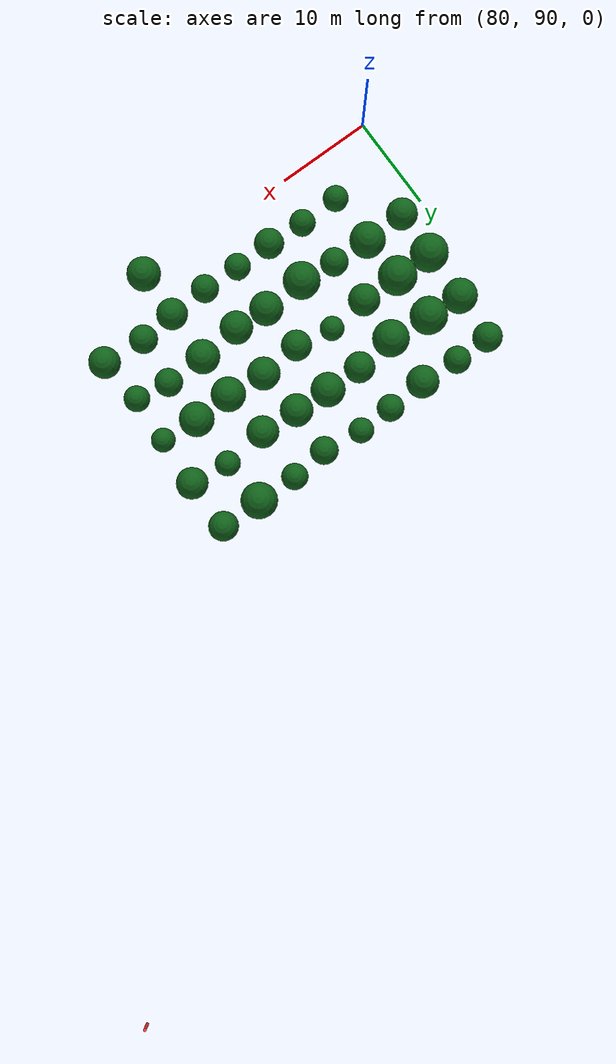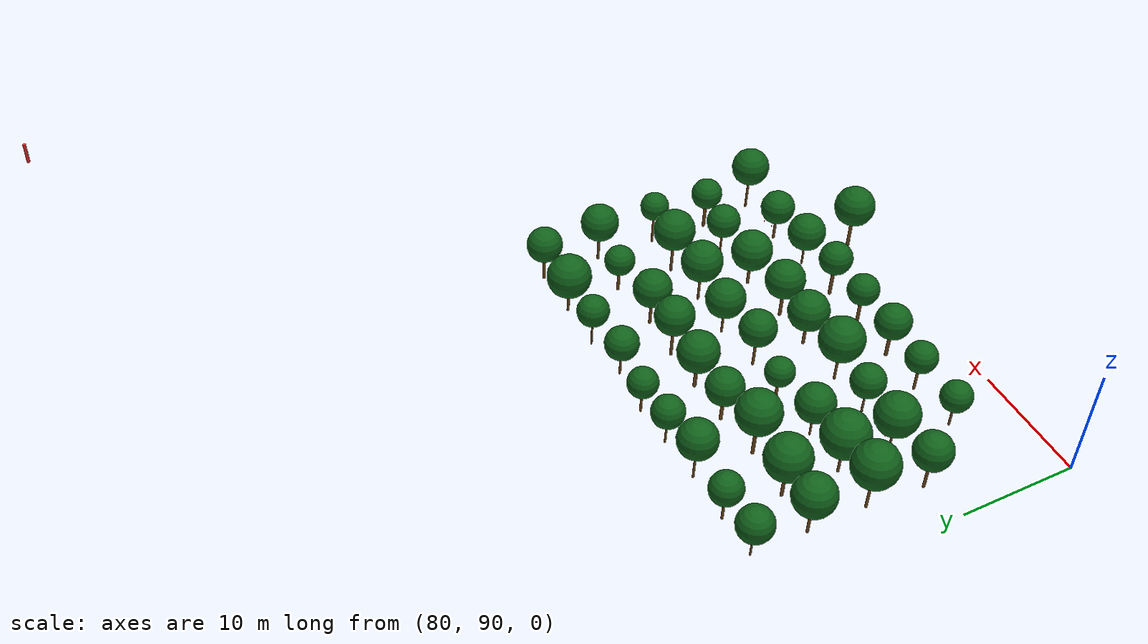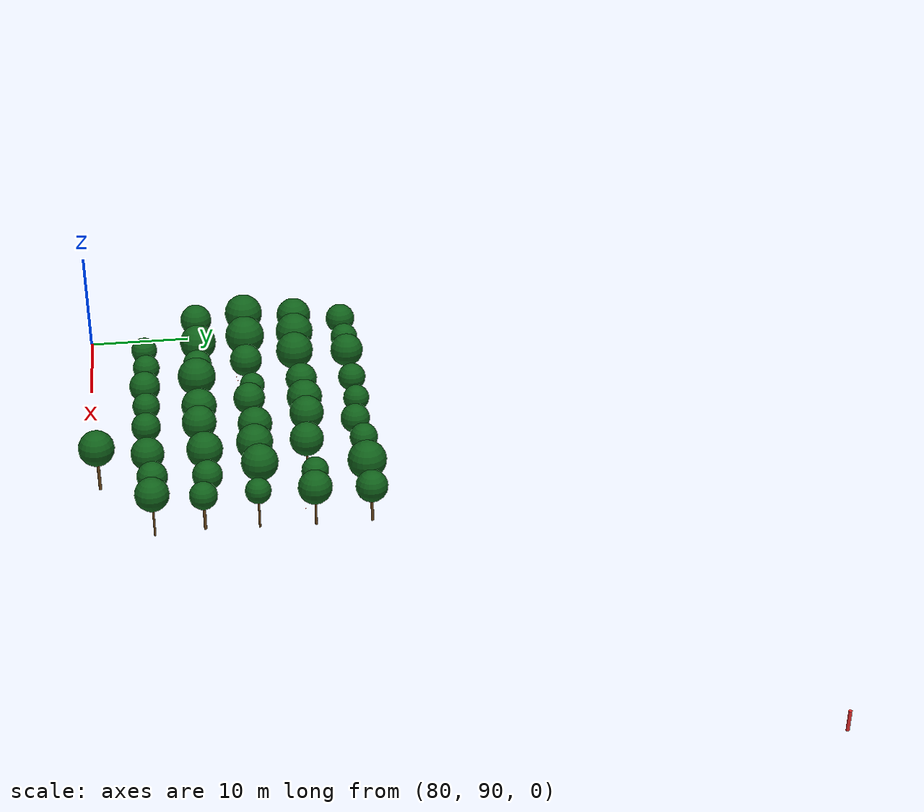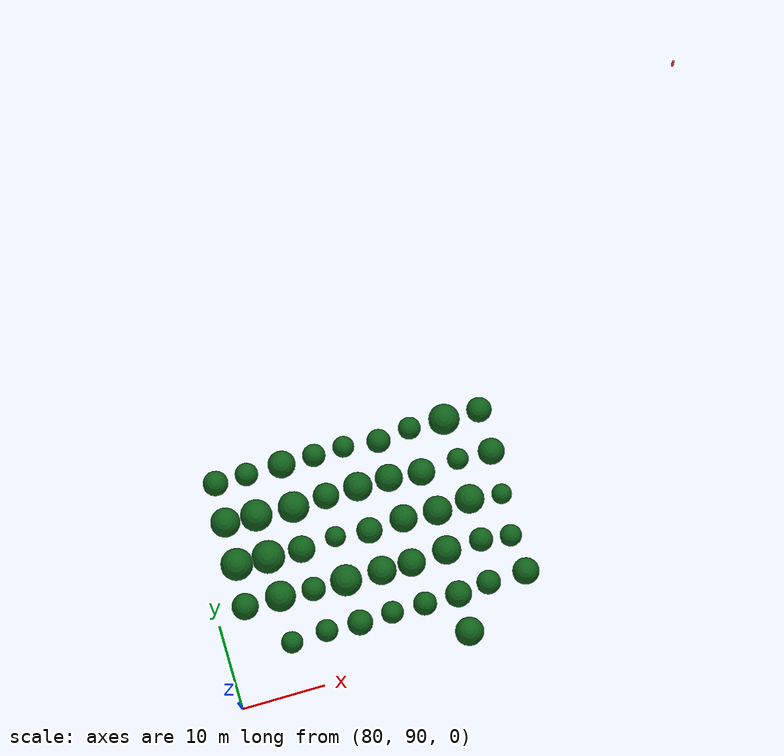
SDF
<sdf version="1.9">
 <world name="cheongsong_orchard">
  <model name="apple_tree_2177">
   <static>true</static>
   <pose>107.80 91.04 0 0 0 0</pose>
   <link name="link">
    <collision name="trunk_col">
     <pose>0 0 1.43 0 0 0</pose>
     <geometry><cylinder><radius>0.144</radius><length>2.86</length></cylinder></geometry>
    </collision>
    <visual name="trunk_vis">
     <pose>0 0 1.43 0 0 0</pose>
     <geometry><cylinder><radius>0.144</radius><length>2.86</length></cylinder></geometry>
     <material><ambient>0.35 0.22 0.08 1</ambient><diffuse>0.45 0.30 0.12 1</diffuse></material>
    </visual>
    <collision name="canopy_col">
     <pose>0 0 4.54 0 0 0</pose>
     <geometry><sphere><radius>1.69</radius></sphere></geometry>
    </collision>
    <visual name="canopy_vis">
     <pose>0 0 4.54 0 0 0</pose>
     <geometry><sphere><radius>1.69</radius></sphere></geometry>
     <material><ambient>0.04 0.28 0.06 1</ambient><diffuse>0.06 0.38 0.10 1</diffuse></material>
    </visual>
   </link>
  </model>
  <model name="apple_tree_2214">
   <static>true</static>
   <pose>87.68 95.58 0 0 0 0</pose>
   <link name="link">
    <collision name="trunk_col">
     <pose>0 0 0.98 0 0 0</pose>
     <geometry><cylinder><radius>0.095</radius><length>1.95</length></cylinder></geometry>
    </collision>
    <visual name="trunk_vis">
     <pose>0 0 0.98 0 0 0</pose>
     <geometry><cylinder><radius>0.095</radius><length>1.95</length></cylinder></geometry>
     <material><ambient>0.35 0.22 0.08 1</ambient><diffuse>0.45 0.30 0.12 1</diffuse></material>
    </visual>
    <collision name="canopy_col">
     <pose>0 0 3.24 0 0 0</pose>
     <geometry><sphere><radius>1.29</radius></sphere></geometry>
    </collision>
    <visual name="canopy_vis">
     <pose>0 0 3.24 0 0 0</pose>
     <geometry><sphere><radius>1.29</radius></sphere></geometry>
     <material><ambient>0.04 0.28 0.06 1</ambient><diffuse>0.06 0.38 0.10 1</diffuse></material>
    </visual>
   </link>
  </model>
  <model name="apple_tree_2215">
   <static>true</static>
   <pose>91.93 95.76 0 0 0 0</pose>
   <link name="link">
    <collision name="trunk_col">
     <pose>0 0 1.14 0 0 0</pose>
     <geometry><cylinder><radius>0.111</radius><length>2.28</length></cylinder></geometry>
    </collision>
    <visual name="trunk_vis">
     <pose>0 0 1.14 0 0 0</pose>
     <geometry><cylinder><radius>0.111</radius><length>2.28</length></cylinder></geometry>
     <material><ambient>0.35 0.22 0.08 1</ambient><diffuse>0.45 0.30 0.12 1</diffuse></material>
    </visual>
    <collision name="canopy_col">
     <pose>0 0 3.60 0 0 0</pose>
     <geometry><sphere><radius>1.32</radius></sphere></geometry>
    </collision>
    <visual name="canopy_vis">
     <pose>0 0 3.60 0 0 0</pose>
     <geometry><sphere><radius>1.32</radius></sphere></geometry>
     <material><ambient>0.04 0.28 0.06 1</ambient><diffuse>0.06 0.38 0.10 1</diffuse></material>
    </visual>
   </link>
  </model>
  <model name="apple_tree_2216">
   <static>true</static>
   <pose>95.90 95.58 0 0 0 0</pose>
   <link name="link">
    <collision name="trunk_col">
     <pose>0 0 1.15 0 0 0</pose>
     <geometry><cylinder><radius>0.148</radius><length>2.31</length></cylinder></geometry>
    </collision>
    <visual name="trunk_vis">
     <pose>0 0 1.15 0 0 0</pose>
     <geometry><cylinder><radius>0.148</radius><length>2.31</length></cylinder></geometry>
     <material><ambient>0.35 0.22 0.08 1</ambient><diffuse>0.45 0.30 0.12 1</diffuse></material>
    </visual>
    <collision name="canopy_col">
     <pose>0 0 3.81 0 0 0</pose>
     <geometry><sphere><radius>1.50</radius></sphere></geometry>
    </collision>
    <visual name="canopy_vis">
     <pose>0 0 3.81 0 0 0</pose>
     <geometry><sphere><radius>1.50</radius></sphere></geometry>
     <material><ambient>0.04 0.28 0.06 1</ambient><diffuse>0.06 0.38 0.10 1</diffuse></material>
    </visual>
   </link>
  </model>
  <model name="apple_tree_2217">
   <static>true</static>
   <pose>99.82 95.68 0 0 0 0</pose>
   <link name="link">
    <collision name="trunk_col">
     <pose>0 0 1.30 0 0 0</pose>
     <geometry><cylinder><radius>0.140</radius><length>2.60</length></cylinder></geometry>
    </collision>
    <visual name="trunk_vis">
     <pose>0 0 1.30 0 0 0</pose>
     <geometry><cylinder><radius>0.140</radius><length>2.60</length></cylinder></geometry>
     <material><ambient>0.35 0.22 0.08 1</ambient><diffuse>0.45 0.30 0.12 1</diffuse></material>
    </visual>
    <collision name="canopy_col">
     <pose>0 0 3.91 0 0 0</pose>
     <geometry><sphere><radius>1.32</radius></sphere></geometry>
    </collision>
    <visual name="canopy_vis">
     <pose>0 0 3.91 0 0 0</pose>
     <geometry><sphere><radius>1.32</radius></sphere></geometry>
     <material><ambient>0.04 0.28 0.06 1</ambient><diffuse>0.06 0.38 0.10 1</diffuse></material>
    </visual>
   </link>
  </model>
  <model name="apple_tree_2218">
   <static>true</static>
   <pose>103.74 95.62 0 0 0 0</pose>
   <link name="link">
    <collision name="trunk_col">
     <pose>0 0 1.30 0 0 0</pose>
     <geometry><cylinder><radius>0.146</radius><length>2.60</length></cylinder></geometry>
    </collision>
    <visual name="trunk_vis">
     <pose>0 0 1.30 0 0 0</pose>
     <geometry><cylinder><radius>0.146</radius><length>2.60</length></cylinder></geometry>
     <material><ambient>0.35 0.22 0.08 1</ambient><diffuse>0.45 0.30 0.12 1</diffuse></material>
    </visual>
    <collision name="canopy_col">
     <pose>0 0 3.99 0 0 0</pose>
     <geometry><sphere><radius>1.39</radius></sphere></geometry>
    </collision>
    <visual name="canopy_vis">
     <pose>0 0 3.99 0 0 0</pose>
     <geometry><sphere><radius>1.39</radius></sphere></geometry>
     <material><ambient>0.04 0.28 0.06 1</ambient><diffuse>0.06 0.38 0.10 1</diffuse></material>
    </visual>
   </link>
  </model>
  <model name="apple_tree_2219">
   <static>true</static>
   <pose>107.80 95.67 0 0 0 0</pose>
   <link name="link">
    <collision name="trunk_col">
     <pose>0 0 1.00 0 0 0</pose>
     <geometry><cylinder><radius>0.080</radius><length>2.00</length></cylinder></geometry>
    </collision>
    <visual name="trunk_vis">
     <pose>0 0 1.00 0 0 0</pose>
     <geometry><cylinder><radius>0.080</radius><length>2.00</length></cylinder></geometry>
     <material><ambient>0.35 0.22 0.08 1</ambient><diffuse>0.45 0.30 0.12 1</diffuse></material>
    </visual>
    <collision name="canopy_col">
     <pose>0 0 3.57 0 0 0</pose>
     <geometry><sphere><radius>1.57</radius></sphere></geometry>
    </collision>
    <visual name="canopy_vis">
     <pose>0 0 3.57 0 0 0</pose>
     <geometry><sphere><radius>1.57</radius></sphere></geometry>
     <material><ambient>0.04 0.28 0.06 1</ambient><diffuse>0.06 0.38 0.10 1</diffuse></material>
    </visual>
   </link>
  </model>
  <model name="apple_tree_2220">
   <static>true</static>
   <pose>111.55 96.04 0 0 0 0</pose>
   <link name="link">
    <collision name="trunk_col">
     <pose>0 0 1.00 0 0 0</pose>
     <geometry><cylinder><radius>0.112</radius><length>2.01</length></cylinder></geometry>
    </collision>
    <visual name="trunk_vis">
     <pose>0 0 1.00 0 0 0</pose>
     <geometry><cylinder><radius>0.112</radius><length>2.01</length></cylinder></geometry>
     <material><ambient>0.35 0.22 0.08 1</ambient><diffuse>0.45 0.30 0.12 1</diffuse></material>
    </visual>
    <collision name="canopy_col">
     <pose>0 0 3.44 0 0 0</pose>
     <geometry><sphere><radius>1.43</radius></sphere></geometry>
    </collision>
    <visual name="canopy_vis">
     <pose>0 0 3.44 0 0 0</pose>
     <geometry><sphere><radius>1.43</radius></sphere></geometry>
     <material><ambient>0.04 0.28 0.06 1</ambient><diffuse>0.06 0.38 0.10 1</diffuse></material>
    </visual>
   </link>
  </model>
  <model name="apple_tree_2221">
   <static>true</static>
   <pose>116.03 96.01 0 0 0 0</pose>
   <link name="link">
    <collision name="trunk_col">
     <pose>0 0 1.44 0 0 0</pose>
     <geometry><cylinder><radius>0.099</radius><length>2.89</length></cylinder></geometry>
    </collision>
    <visual name="trunk_vis">
     <pose>0 0 1.44 0 0 0</pose>
     <geometry><cylinder><radius>0.099</radius><length>2.89</length></cylinder></geometry>
     <material><ambient>0.35 0.22 0.08 1</ambient><diffuse>0.45 0.30 0.12 1</diffuse></material>
    </visual>
    <collision name="canopy_col">
     <pose>0 0 4.47 0 0 0</pose>
     <geometry><sphere><radius>1.58</radius></sphere></geometry>
    </collision>
    <visual name="canopy_vis">
     <pose>0 0 4.47 0 0 0</pose>
     <geometry><sphere><radius>1.58</radius></sphere></geometry>
     <material><ambient>0.04 0.28 0.06 1</ambient><diffuse>0.06 0.38 0.10 1</diffuse></material>
    </visual>
   </link>
  </model>
  <model name="apple_tree_2259">
   <static>true</static>
   <pose>83.56 101.00 0 0 0 0</pose>
   <link name="link">
    <collision name="trunk_col">
     <pose>0 0 1.27 0 0 0</pose>
     <geometry><cylinder><radius>0.120</radius><length>2.54</length></cylinder></geometry>
    </collision>
    <visual name="trunk_vis">
     <pose>0 0 1.27 0 0 0</pose>
     <geometry><cylinder><radius>0.120</radius><length>2.54</length></cylinder></geometry>
     <material><ambient>0.35 0.22 0.08 1</ambient><diffuse>0.45 0.30 0.12 1</diffuse></material>
    </visual>
    <collision name="canopy_col">
     <pose>0 0 4.12 0 0 0</pose>
     <geometry><sphere><radius>1.58</radius></sphere></geometry>
    </collision>
    <visual name="canopy_vis">
     <pose>0 0 4.12 0 0 0</pose>
     <geometry><sphere><radius>1.58</radius></sphere></geometry>
     <material><ambient>0.04 0.28 0.06 1</ambient><diffuse>0.06 0.38 0.10 1</diffuse></material>
    </visual>
   </link>
  </model>
  <model name="apple_tree_2260">
   <static>true</static>
   <pose>87.81 101.06 0 0 0 0</pose>
   <link name="link">
    <collision name="trunk_col">
     <pose>0 0 1.01 0 0 0</pose>
     <geometry><cylinder><radius>0.092</radius><length>2.02</length></cylinder></geometry>
    </collision>
    <visual name="trunk_vis">
     <pose>0 0 1.01 0 0 0</pose>
     <geometry><cylinder><radius>0.092</radius><length>2.02</length></cylinder></geometry>
     <material><ambient>0.35 0.22 0.08 1</ambient><diffuse>0.45 0.30 0.12 1</diffuse></material>
    </visual>
    <collision name="canopy_col">
     <pose>0 0 3.84 0 0 0</pose>
     <geometry><sphere><radius>1.81</radius></sphere></geometry>
    </collision>
    <visual name="canopy_vis">
     <pose>0 0 3.84 0 0 0</pose>
     <geometry><sphere><radius>1.81</radius></sphere></geometry>
     <material><ambient>0.04 0.28 0.06 1</ambient><diffuse>0.06 0.38 0.10 1</diffuse></material>
    </visual>
   </link>
  </model>
  <model name="apple_tree_2261">
   <static>true</static>
   <pose>91.75 100.85 0 0 0 0</pose>
   <link name="link">
    <collision name="trunk_col">
     <pose>0 0 1.09 0 0 0</pose>
     <geometry><cylinder><radius>0.090</radius><length>2.18</length></cylinder></geometry>
    </collision>
    <visual name="trunk_vis">
     <pose>0 0 1.09 0 0 0</pose>
     <geometry><cylinder><radius>0.090</radius><length>2.18</length></cylinder></geometry>
     <material><ambient>0.35 0.22 0.08 1</ambient><diffuse>0.45 0.30 0.12 1</diffuse></material>
    </visual>
    <collision name="canopy_col">
     <pose>0 0 3.60 0 0 0</pose>
     <geometry><sphere><radius>1.42</radius></sphere></geometry>
    </collision>
    <visual name="canopy_vis">
     <pose>0 0 3.60 0 0 0</pose>
     <geometry><sphere><radius>1.42</radius></sphere></geometry>
     <material><ambient>0.04 0.28 0.06 1</ambient><diffuse>0.06 0.38 0.10 1</diffuse></material>
    </visual>
   </link>
  </model>
  <model name="apple_tree_2262">
   <static>true</static>
   <pose>95.65 100.70 0 0 0 0</pose>
   <link name="link">
    <collision name="trunk_col">
     <pose>0 0 1.30 0 0 0</pose>
     <geometry><cylinder><radius>0.106</radius><length>2.59</length></cylinder></geometry>
    </collision>
    <visual name="trunk_vis">
     <pose>0 0 1.30 0 0 0</pose>
     <geometry><cylinder><radius>0.106</radius><length>2.59</length></cylinder></geometry>
     <material><ambient>0.35 0.22 0.08 1</ambient><diffuse>0.45 0.30 0.12 1</diffuse></material>
    </visual>
    <collision name="canopy_col">
     <pose>0 0 4.45 0 0 0</pose>
     <geometry><sphere><radius>1.86</radius></sphere></geometry>
    </collision>
    <visual name="canopy_vis">
     <pose>0 0 4.45 0 0 0</pose>
     <geometry><sphere><radius>1.86</radius></sphere></geometry>
     <material><ambient>0.04 0.28 0.06 1</ambient><diffuse>0.06 0.38 0.10 1</diffuse></material>
    </visual>
   </link>
  </model>
  <model name="apple_tree_2263">
   <static>true</static>
   <pose>99.98 100.74 0 0 0 0</pose>
   <link name="link">
    <collision name="trunk_col">
     <pose>0 0 1.00 0 0 0</pose>
     <geometry><cylinder><radius>0.130</radius><length>1.99</length></cylinder></geometry>
    </collision>
    <visual name="trunk_vis">
     <pose>0 0 1.00 0 0 0</pose>
     <geometry><cylinder><radius>0.130</radius><length>1.99</length></cylinder></geometry>
     <material><ambient>0.35 0.22 0.08 1</ambient><diffuse>0.45 0.30 0.12 1</diffuse></material>
    </visual>
    <collision name="canopy_col">
     <pose>0 0 3.69 0 0 0</pose>
     <geometry><sphere><radius>1.70</radius></sphere></geometry>
    </collision>
    <visual name="canopy_vis">
     <pose>0 0 3.69 0 0 0</pose>
     <geometry><sphere><radius>1.70</radius></sphere></geometry>
     <material><ambient>0.04 0.28 0.06 1</ambient><diffuse>0.06 0.38 0.10 1</diffuse></material>
    </visual>
   </link>
  </model>
  <model name="apple_tree_2264">
   <static>true</static>
   <pose>103.54 100.64 0 0 0 0</pose>
   <link name="link">
    <collision name="trunk_col">
     <pose>0 0 1.17 0 0 0</pose>
     <geometry><cylinder><radius>0.140</radius><length>2.35</length></cylinder></geometry>
    </collision>
    <visual name="trunk_vis">
     <pose>0 0 1.17 0 0 0</pose>
     <geometry><cylinder><radius>0.140</radius><length>2.35</length></cylinder></geometry>
     <material><ambient>0.35 0.22 0.08 1</ambient><diffuse>0.45 0.30 0.12 1</diffuse></material>
    </visual>
    <collision name="canopy_col">
     <pose>0 0 4.00 0 0 0</pose>
     <geometry><sphere><radius>1.65</radius></sphere></geometry>
    </collision>
    <visual name="canopy_vis">
     <pose>0 0 4.00 0 0 0</pose>
     <geometry><sphere><radius>1.65</radius></sphere></geometry>
     <material><ambient>0.04 0.28 0.06 1</ambient><diffuse>0.06 0.38 0.10 1</diffuse></material>
    </visual>
   </link>
  </model>
  <model name="apple_tree_2265">
   <static>true</static>
   <pose>107.88 100.98 0 0 0 0</pose>
   <link name="link">
    <collision name="trunk_col">
     <pose>0 0 0.98 0 0 0</pose>
     <geometry><cylinder><radius>0.124</radius><length>1.97</length></cylinder></geometry>
    </collision>
    <visual name="trunk_vis">
     <pose>0 0 0.98 0 0 0</pose>
     <geometry><cylinder><radius>0.124</radius><length>1.97</length></cylinder></geometry>
     <material><ambient>0.35 0.22 0.08 1</ambient><diffuse>0.45 0.30 0.12 1</diffuse></material>
    </visual>
    <collision name="canopy_col">
     <pose>0 0 3.68 0 0 0</pose>
     <geometry><sphere><radius>1.71</radius></sphere></geometry>
    </collision>
    <visual name="canopy_vis">
     <pose>0 0 3.68 0 0 0</pose>
     <geometry><sphere><radius>1.71</radius></sphere></geometry>
     <material><ambient>0.04 0.28 0.06 1</ambient><diffuse>0.06 0.38 0.10 1</diffuse></material>
    </visual>
   </link>
  </model>
  <model name="apple_tree_2266">
   <static>true</static>
   <pose>112.07 101.07 0 0 0 0</pose>
   <link name="link">
    <collision name="trunk_col">
     <pose>0 0 1.07 0 0 0</pose>
     <geometry><cylinder><radius>0.085</radius><length>2.13</length></cylinder></geometry>
    </collision>
    <visual name="trunk_vis">
     <pose>0 0 1.07 0 0 0</pose>
     <geometry><cylinder><radius>0.085</radius><length>2.13</length></cylinder></geometry>
     <material><ambient>0.35 0.22 0.08 1</ambient><diffuse>0.45 0.30 0.12 1</diffuse></material>
    </visual>
    <collision name="canopy_col">
     <pose>0 0 3.54 0 0 0</pose>
     <geometry><sphere><radius>1.41</radius></sphere></geometry>
    </collision>
    <visual name="canopy_vis">
     <pose>0 0 3.54 0 0 0</pose>
     <geometry><sphere><radius>1.41</radius></sphere></geometry>
     <material><ambient>0.04 0.28 0.06 1</ambient><diffuse>0.06 0.38 0.10 1</diffuse></material>
    </visual>
   </link>
  </model>
  <model name="apple_tree_2267">
   <static>true</static>
   <pose>115.54 100.58 0 0 0 0</pose>
   <link name="link">
    <collision name="trunk_col">
     <pose>0 0 1.17 0 0 0</pose>
     <geometry><cylinder><radius>0.138</radius><length>2.33</length></cylinder></geometry>
    </collision>
    <visual name="trunk_vis">
     <pose>0 0 1.17 0 0 0</pose>
     <geometry><cylinder><radius>0.138</radius><length>2.33</length></cylinder></geometry>
     <material><ambient>0.35 0.22 0.08 1</ambient><diffuse>0.45 0.30 0.12 1</diffuse></material>
    </visual>
    <collision name="canopy_col">
     <pose>0 0 3.63 0 0 0</pose>
     <geometry><sphere><radius>1.30</radius></sphere></geometry>
    </collision>
    <visual name="canopy_vis">
     <pose>0 0 3.63 0 0 0</pose>
     <geometry><sphere><radius>1.30</radius></sphere></geometry>
     <material><ambient>0.04 0.28 0.06 1</ambient><diffuse>0.06 0.38 0.10 1</diffuse></material>
    </visual>
   </link>
  </model>
  <model name="apple_tree_2308">
   <static>true</static>
   <pose>83.95 105.92 0 0 0 0</pose>
   <link name="link">
    <collision name="trunk_col">
     <pose>0 0 1.45 0 0 0</pose>
     <geometry><cylinder><radius>0.112</radius><length>2.91</length></cylinder></geometry>
    </collision>
    <visual name="trunk_vis">
     <pose>0 0 1.45 0 0 0</pose>
     <geometry><cylinder><radius>0.112</radius><length>2.91</length></cylinder></geometry>
     <material><ambient>0.35 0.22 0.08 1</ambient><diffuse>0.45 0.30 0.12 1</diffuse></material>
    </visual>
    <collision name="canopy_col">
     <pose>0 0 4.82 0 0 0</pose>
     <geometry><sphere><radius>1.91</radius></sphere></geometry>
    </collision>
    <visual name="canopy_vis">
     <pose>0 0 4.82 0 0 0</pose>
     <geometry><sphere><radius>1.91</radius></sphere></geometry>
     <material><ambient>0.04 0.28 0.06 1</ambient><diffuse>0.06 0.38 0.10 1</diffuse></material>
    </visual>
   </link>
  </model>
  <model name="apple_tree_2309">
   <static>true</static>
   <pose>87.69 105.83 0 0 0 0</pose>
   <link name="link">
    <collision name="trunk_col">
     <pose>0 0 1.15 0 0 0</pose>
     <geometry><cylinder><radius>0.107</radius><length>2.31</length></cylinder></geometry>
    </collision>
    <visual name="trunk_vis">
     <pose>0 0 1.15 0 0 0</pose>
     <geometry><cylinder><radius>0.107</radius><length>2.31</length></cylinder></geometry>
     <material><ambient>0.35 0.22 0.08 1</ambient><diffuse>0.45 0.30 0.12 1</diffuse></material>
    </visual>
    <collision name="canopy_col">
     <pose>0 0 4.27 0 0 0</pose>
     <geometry><sphere><radius>1.96</radius></sphere></geometry>
    </collision>
    <visual name="canopy_vis">
     <pose>0 0 4.27 0 0 0</pose>
     <geometry><sphere><radius>1.96</radius></sphere></geometry>
     <material><ambient>0.04 0.28 0.06 1</ambient><diffuse>0.06 0.38 0.10 1</diffuse></material>
    </visual>
   </link>
  </model>
  <model name="apple_tree_2310">
   <static>true</static>
   <pose>91.66 105.71 0 0 0 0</pose>
   <link name="link">
    <collision name="trunk_col">
     <pose>0 0 1.03 0 0 0</pose>
     <geometry><cylinder><radius>0.081</radius><length>2.05</length></cylinder></geometry>
    </collision>
    <visual name="trunk_vis">
     <pose>0 0 1.03 0 0 0</pose>
     <geometry><cylinder><radius>0.081</radius><length>2.05</length></cylinder></geometry>
     <material><ambient>0.35 0.22 0.08 1</ambient><diffuse>0.45 0.30 0.12 1</diffuse></material>
    </visual>
    <collision name="canopy_col">
     <pose>0 0 3.65 0 0 0</pose>
     <geometry><sphere><radius>1.60</radius></sphere></geometry>
    </collision>
    <visual name="canopy_vis">
     <pose>0 0 3.65 0 0 0</pose>
     <geometry><sphere><radius>1.60</radius></sphere></geometry>
     <material><ambient>0.04 0.28 0.06 1</ambient><diffuse>0.06 0.38 0.10 1</diffuse></material>
    </visual>
   </link>
  </model>
  <model name="apple_tree_2311">
   <static>true</static>
   <pose>95.85 106.09 0 0 0 0</pose>
   <link name="link">
    <collision name="trunk_col">
     <pose>0 0 1.00 0 0 0</pose>
     <geometry><cylinder><radius>0.124</radius><length>2.00</length></cylinder></geometry>
    </collision>
    <visual name="trunk_vis">
     <pose>0 0 1.00 0 0 0</pose>
     <geometry><cylinder><radius>0.124</radius><length>2.00</length></cylinder></geometry>
     <material><ambient>0.35 0.22 0.08 1</ambient><diffuse>0.45 0.30 0.12 1</diffuse></material>
    </visual>
    <collision name="canopy_col">
     <pose>0 0 3.22 0 0 0</pose>
     <geometry><sphere><radius>1.22</radius></sphere></geometry>
    </collision>
    <visual name="canopy_vis">
     <pose>0 0 3.22 0 0 0</pose>
     <geometry><sphere><radius>1.22</radius></sphere></geometry>
     <material><ambient>0.04 0.28 0.06 1</ambient><diffuse>0.06 0.38 0.10 1</diffuse></material>
    </visual>
   </link>
  </model>
  <model name="apple_tree_2312">
   <static>true</static>
   <pose>99.85 105.60 0 0 0 0</pose>
   <link name="link">
    <collision name="trunk_col">
     <pose>0 0 1.29 0 0 0</pose>
     <geometry><cylinder><radius>0.112</radius><length>2.57</length></cylinder></geometry>
    </collision>
    <visual name="trunk_vis">
     <pose>0 0 1.29 0 0 0</pose>
     <geometry><cylinder><radius>0.112</radius><length>2.57</length></cylinder></geometry>
     <material><ambient>0.35 0.22 0.08 1</ambient><diffuse>0.45 0.30 0.12 1</diffuse></material>
    </visual>
    <collision name="canopy_col">
     <pose>0 0 4.11 0 0 0</pose>
     <geometry><sphere><radius>1.53</radius></sphere></geometry>
    </collision>
    <visual name="canopy_vis">
     <pose>0 0 4.11 0 0 0</pose>
     <geometry><sphere><radius>1.53</radius></sphere></geometry>
     <material><ambient>0.04 0.28 0.06 1</ambient><diffuse>0.06 0.38 0.10 1</diffuse></material>
    </visual>
   </link>
  </model>
  <model name="apple_tree_2313">
   <static>true</static>
   <pose>104.05 105.90 0 0 0 0</pose>
   <link name="link">
    <collision name="trunk_col">
     <pose>0 0 1.06 0 0 0</pose>
     <geometry><cylinder><radius>0.095</radius><length>2.12</length></cylinder></geometry>
    </collision>
    <visual name="trunk_vis">
     <pose>0 0 1.06 0 0 0</pose>
     <geometry><cylinder><radius>0.095</radius><length>2.12</length></cylinder></geometry>
     <material><ambient>0.35 0.22 0.08 1</ambient><diffuse>0.45 0.30 0.12 1</diffuse></material>
    </visual>
    <collision name="canopy_col">
     <pose>0 0 3.77 0 0 0</pose>
     <geometry><sphere><radius>1.65</radius></sphere></geometry>
    </collision>
    <visual name="canopy_vis">
     <pose>0 0 3.77 0 0 0</pose>
     <geometry><sphere><radius>1.65</radius></sphere></geometry>
     <material><ambient>0.04 0.28 0.06 1</ambient><diffuse>0.06 0.38 0.10 1</diffuse></material>
    </visual>
   </link>
  </model>
  <model name="apple_tree_2314">
   <static>true</static>
   <pose>108.11 105.65 0 0 0 0</pose>
   <link name="link">
    <collision name="trunk_col">
     <pose>0 0 1.27 0 0 0</pose>
     <geometry><cylinder><radius>0.103</radius><length>2.54</length></cylinder></geometry>
    </collision>
    <visual name="trunk_vis">
     <pose>0 0 1.27 0 0 0</pose>
     <geometry><cylinder><radius>0.103</radius><length>2.54</length></cylinder></geometry>
     <material><ambient>0.35 0.22 0.08 1</ambient><diffuse>0.45 0.30 0.12 1</diffuse></material>
    </visual>
    <collision name="canopy_col">
     <pose>0 0 4.27 0 0 0</pose>
     <geometry><sphere><radius>1.73</radius></sphere></geometry>
    </collision>
    <visual name="canopy_vis">
     <pose>0 0 4.27 0 0 0</pose>
     <geometry><sphere><radius>1.73</radius></sphere></geometry>
     <material><ambient>0.04 0.28 0.06 1</ambient><diffuse>0.06 0.38 0.10 1</diffuse></material>
    </visual>
   </link>
  </model>
  <model name="apple_tree_2315">
   <static>true</static>
   <pose>112.06 105.90 0 0 0 0</pose>
   <link name="link">
    <collision name="trunk_col">
     <pose>0 0 1.41 0 0 0</pose>
     <geometry><cylinder><radius>0.116</radius><length>2.83</length></cylinder></geometry>
    </collision>
    <visual name="trunk_vis">
     <pose>0 0 1.41 0 0 0</pose>
     <geometry><cylinder><radius>0.116</radius><length>2.83</length></cylinder></geometry>
     <material><ambient>0.35 0.22 0.08 1</ambient><diffuse>0.45 0.30 0.12 1</diffuse></material>
    </visual>
    <collision name="canopy_col">
     <pose>0 0 4.55 0 0 0</pose>
     <geometry><sphere><radius>1.73</radius></sphere></geometry>
    </collision>
    <visual name="canopy_vis">
     <pose>0 0 4.55 0 0 0</pose>
     <geometry><sphere><radius>1.73</radius></sphere></geometry>
     <material><ambient>0.04 0.28 0.06 1</ambient><diffuse>0.06 0.38 0.10 1</diffuse></material>
    </visual>
   </link>
  </model>
  <model name="apple_tree_2316">
   <static>true</static>
   <pose>115.85 105.52 0 0 0 0</pose>
   <link name="link">
    <collision name="trunk_col">
     <pose>0 0 1.37 0 0 0</pose>
     <geometry><cylinder><radius>0.100</radius><length>2.75</length></cylinder></geometry>
    </collision>
    <visual name="trunk_vis">
     <pose>0 0 1.37 0 0 0</pose>
     <geometry><cylinder><radius>0.100</radius><length>2.75</length></cylinder></geometry>
     <material><ambient>0.35 0.22 0.08 1</ambient><diffuse>0.45 0.30 0.12 1</diffuse></material>
    </visual>
    <collision name="canopy_col">
     <pose>0 0 3.95 0 0 0</pose>
     <geometry><sphere><radius>1.20</radius></sphere></geometry>
    </collision>
    <visual name="canopy_vis">
     <pose>0 0 3.95 0 0 0</pose>
     <geometry><sphere><radius>1.20</radius></sphere></geometry>
     <material><ambient>0.04 0.28 0.06 1</ambient><diffuse>0.06 0.38 0.10 1</diffuse></material>
    </visual>
   </link>
  </model>
  <model name="apple_tree_2352">
   <static>true</static>
   <pose>83.96 111.08 0 0 0 0</pose>
   <link name="link">
    <collision name="trunk_col">
     <pose>0 0 1.25 0 0 0</pose>
     <geometry><cylinder><radius>0.117</radius><length>2.49</length></cylinder></geometry>
    </collision>
    <visual name="trunk_vis">
     <pose>0 0 1.25 0 0 0</pose>
     <geometry><cylinder><radius>0.117</radius><length>2.49</length></cylinder></geometry>
     <material><ambient>0.35 0.22 0.08 1</ambient><diffuse>0.45 0.30 0.12 1</diffuse></material>
    </visual>
    <collision name="canopy_col">
     <pose>0 0 4.24 0 0 0</pose>
     <geometry><sphere><radius>1.75</radius></sphere></geometry>
    </collision>
    <visual name="canopy_vis">
     <pose>0 0 4.24 0 0 0</pose>
     <geometry><sphere><radius>1.75</radius></sphere></geometry>
     <material><ambient>0.04 0.28 0.06 1</ambient><diffuse>0.06 0.38 0.10 1</diffuse></material>
    </visual>
   </link>
  </model>
  <model name="apple_tree_2353">
   <static>true</static>
   <pose>87.65 110.88 0 0 0 0</pose>
   <link name="link">
    <collision name="trunk_col">
     <pose>0 0 1.24 0 0 0</pose>
     <geometry><cylinder><radius>0.135</radius><length>2.48</length></cylinder></geometry>
    </collision>
    <visual name="trunk_vis">
     <pose>0 0 1.24 0 0 0</pose>
     <geometry><cylinder><radius>0.135</radius><length>2.48</length></cylinder></geometry>
     <material><ambient>0.35 0.22 0.08 1</ambient><diffuse>0.45 0.30 0.12 1</diffuse></material>
    </visual>
    <collision name="canopy_col">
     <pose>0 0 4.37 0 0 0</pose>
     <geometry><sphere><radius>1.89</radius></sphere></geometry>
    </collision>
    <visual name="canopy_vis">
     <pose>0 0 4.37 0 0 0</pose>
     <geometry><sphere><radius>1.89</radius></sphere></geometry>
     <material><ambient>0.04 0.28 0.06 1</ambient><diffuse>0.06 0.38 0.10 1</diffuse></material>
    </visual>
   </link>
  </model>
  <model name="apple_tree_2354">
   <static>true</static>
   <pose>92.08 110.59 0 0 0 0</pose>
   <link name="link">
    <collision name="trunk_col">
     <pose>0 0 1.42 0 0 0</pose>
     <geometry><cylinder><radius>0.140</radius><length>2.85</length></cylinder></geometry>
    </collision>
    <visual name="trunk_vis">
     <pose>0 0 1.42 0 0 0</pose>
     <geometry><cylinder><radius>0.140</radius><length>2.85</length></cylinder></geometry>
     <material><ambient>0.35 0.22 0.08 1</ambient><diffuse>0.45 0.30 0.12 1</diffuse></material>
    </visual>
    <collision name="canopy_col">
     <pose>0 0 4.68 0 0 0</pose>
     <geometry><sphere><radius>1.84</radius></sphere></geometry>
    </collision>
    <visual name="canopy_vis">
     <pose>0 0 4.68 0 0 0</pose>
     <geometry><sphere><radius>1.84</radius></sphere></geometry>
     <material><ambient>0.04 0.28 0.06 1</ambient><diffuse>0.06 0.38 0.10 1</diffuse></material>
    </visual>
   </link>
  </model>
  <model name="apple_tree_2355">
   <static>true</static>
   <pose>96.08 110.93 0 0 0 0</pose>
   <link name="link">
    <collision name="trunk_col">
     <pose>0 0 1.09 0 0 0</pose>
     <geometry><cylinder><radius>0.139</radius><length>2.17</length></cylinder></geometry>
    </collision>
    <visual name="trunk_vis">
     <pose>0 0 1.09 0 0 0</pose>
     <geometry><cylinder><radius>0.139</radius><length>2.17</length></cylinder></geometry>
     <material><ambient>0.35 0.22 0.08 1</ambient><diffuse>0.45 0.30 0.12 1</diffuse></material>
    </visual>
    <collision name="canopy_col">
     <pose>0 0 3.72 0 0 0</pose>
     <geometry><sphere><radius>1.55</radius></sphere></geometry>
    </collision>
    <visual name="canopy_vis">
     <pose>0 0 3.72 0 0 0</pose>
     <geometry><sphere><radius>1.55</radius></sphere></geometry>
     <material><ambient>0.04 0.28 0.06 1</ambient><diffuse>0.06 0.38 0.10 1</diffuse></material>
    </visual>
   </link>
  </model>
  <model name="apple_tree_2356">
   <static>true</static>
   <pose>99.94 110.94 0 0 0 0</pose>
   <link name="link">
    <collision name="trunk_col">
     <pose>0 0 1.10 0 0 0</pose>
     <geometry><cylinder><radius>0.148</radius><length>2.19</length></cylinder></geometry>
    </collision>
    <visual name="trunk_vis">
     <pose>0 0 1.10 0 0 0</pose>
     <geometry><cylinder><radius>0.148</radius><length>2.19</length></cylinder></geometry>
     <material><ambient>0.35 0.22 0.08 1</ambient><diffuse>0.45 0.30 0.12 1</diffuse></material>
    </visual>
    <collision name="canopy_col">
     <pose>0 0 3.91 0 0 0</pose>
     <geometry><sphere><radius>1.72</radius></sphere></geometry>
    </collision>
    <visual name="canopy_vis">
     <pose>0 0 3.91 0 0 0</pose>
     <geometry><sphere><radius>1.72</radius></sphere></geometry>
     <material><ambient>0.04 0.28 0.06 1</ambient><diffuse>0.06 0.38 0.10 1</diffuse></material>
    </visual>
   </link>
  </model>
  <model name="apple_tree_2357">
   <static>true</static>
   <pose>103.69 110.87 0 0 0 0</pose>
   <link name="link">
    <collision name="trunk_col">
     <pose>0 0 1.39 0 0 0</pose>
     <geometry><cylinder><radius>0.123</radius><length>2.77</length></cylinder></geometry>
    </collision>
    <visual name="trunk_vis">
     <pose>0 0 1.39 0 0 0</pose>
     <geometry><cylinder><radius>0.123</radius><length>2.77</length></cylinder></geometry>
     <material><ambient>0.35 0.22 0.08 1</ambient><diffuse>0.45 0.30 0.12 1</diffuse></material>
    </visual>
    <collision name="canopy_col">
     <pose>0 0 4.42 0 0 0</pose>
     <geometry><sphere><radius>1.64</radius></sphere></geometry>
    </collision>
    <visual name="canopy_vis">
     <pose>0 0 4.42 0 0 0</pose>
     <geometry><sphere><radius>1.64</radius></sphere></geometry>
     <material><ambient>0.04 0.28 0.06 1</ambient><diffuse>0.06 0.38 0.10 1</diffuse></material>
    </visual>
   </link>
  </model>
  <model name="apple_tree_2358">
   <static>true</static>
   <pose>107.55 110.56 0 0 0 0</pose>
   <link name="link">
    <collision name="trunk_col">
     <pose>0 0 1.14 0 0 0</pose>
     <geometry><cylinder><radius>0.124</radius><length>2.29</length></cylinder></geometry>
    </collision>
    <visual name="trunk_vis">
     <pose>0 0 1.14 0 0 0</pose>
     <geometry><cylinder><radius>0.124</radius><length>2.29</length></cylinder></geometry>
     <material><ambient>0.35 0.22 0.08 1</ambient><diffuse>0.45 0.30 0.12 1</diffuse></material>
    </visual>
    <collision name="canopy_col">
     <pose>0 0 3.89 0 0 0</pose>
     <geometry><sphere><radius>1.61</radius></sphere></geometry>
    </collision>
    <visual name="canopy_vis">
     <pose>0 0 3.89 0 0 0</pose>
     <geometry><sphere><radius>1.61</radius></sphere></geometry>
     <material><ambient>0.04 0.28 0.06 1</ambient><diffuse>0.06 0.38 0.10 1</diffuse></material>
    </visual>
   </link>
  </model>
  <model name="apple_tree_2359">
   <static>true</static>
   <pose>112.09 110.96 0 0 0 0</pose>
   <link name="link">
    <collision name="trunk_col">
     <pose>0 0 0.99 0 0 0</pose>
     <geometry><cylinder><radius>0.126</radius><length>1.98</length></cylinder></geometry>
    </collision>
    <visual name="trunk_vis">
     <pose>0 0 0.99 0 0 0</pose>
     <geometry><cylinder><radius>0.126</radius><length>1.98</length></cylinder></geometry>
     <material><ambient>0.35 0.22 0.08 1</ambient><diffuse>0.45 0.30 0.12 1</diffuse></material>
    </visual>
    <collision name="canopy_col">
     <pose>0 0 3.26 0 0 0</pose>
     <geometry><sphere><radius>1.27</radius></sphere></geometry>
    </collision>
    <visual name="canopy_vis">
     <pose>0 0 3.26 0 0 0</pose>
     <geometry><sphere><radius>1.27</radius></sphere></geometry>
     <material><ambient>0.04 0.28 0.06 1</ambient><diffuse>0.06 0.38 0.10 1</diffuse></material>
    </visual>
   </link>
  </model>
  <model name="apple_tree_2360">
   <static>true</static>
   <pose>116.06 110.65 0 0 0 0</pose>
   <link name="link">
    <collision name="trunk_col">
     <pose>0 0 1.24 0 0 0</pose>
     <geometry><cylinder><radius>0.111</radius><length>2.48</length></cylinder></geometry>
    </collision>
    <visual name="trunk_vis">
     <pose>0 0 1.24 0 0 0</pose>
     <geometry><cylinder><radius>0.111</radius><length>2.48</length></cylinder></geometry>
     <material><ambient>0.35 0.22 0.08 1</ambient><diffuse>0.45 0.30 0.12 1</diffuse></material>
    </visual>
    <collision name="canopy_col">
     <pose>0 0 4.06 0 0 0</pose>
     <geometry><sphere><radius>1.58</radius></sphere></geometry>
    </collision>
    <visual name="canopy_vis">
     <pose>0 0 4.06 0 0 0</pose>
     <geometry><sphere><radius>1.58</radius></sphere></geometry>
     <material><ambient>0.04 0.28 0.06 1</ambient><diffuse>0.06 0.38 0.10 1</diffuse></material>
    </visual>
   </link>
  </model>
  <model name="apple_tree_2391">
   <static>true</static>
   <pose>84.08 115.90 0 0 0 0</pose>
   <link name="link">
    <collision name="trunk_col">
     <pose>0 0 1.05 0 0 0</pose>
     <geometry><cylinder><radius>0.080</radius><length>2.10</length></cylinder></geometry>
    </collision>
    <visual name="trunk_vis">
     <pose>0 0 1.05 0 0 0</pose>
     <geometry><cylinder><radius>0.080</radius><length>2.10</length></cylinder></geometry>
     <material><ambient>0.35 0.22 0.08 1</ambient><diffuse>0.45 0.30 0.12 1</diffuse></material>
    </visual>
    <collision name="canopy_col">
     <pose>0 0 3.59 0 0 0</pose>
     <geometry><sphere><radius>1.49</radius></sphere></geometry>
    </collision>
    <visual name="canopy_vis">
     <pose>0 0 3.59 0 0 0</pose>
     <geometry><sphere><radius>1.49</radius></sphere></geometry>
     <material><ambient>0.04 0.28 0.06 1</ambient><diffuse>0.06 0.38 0.10 1</diffuse></material>
    </visual>
   </link>
  </model>
  <model name="apple_tree_2392">
   <static>true</static>
   <pose>87.82 115.95 0 0 0 0</pose>
   <link name="link">
    <collision name="trunk_col">
     <pose>0 0 1.06 0 0 0</pose>
     <geometry><cylinder><radius>0.106</radius><length>2.11</length></cylinder></geometry>
    </collision>
    <visual name="trunk_vis">
     <pose>0 0 1.06 0 0 0</pose>
     <geometry><cylinder><radius>0.106</radius><length>2.11</length></cylinder></geometry>
     <material><ambient>0.35 0.22 0.08 1</ambient><diffuse>0.45 0.30 0.12 1</diffuse></material>
    </visual>
    <collision name="canopy_col">
     <pose>0 0 3.48 0 0 0</pose>
     <geometry><sphere><radius>1.37</radius></sphere></geometry>
    </collision>
    <visual name="canopy_vis">
     <pose>0 0 3.48 0 0 0</pose>
     <geometry><sphere><radius>1.37</radius></sphere></geometry>
     <material><ambient>0.04 0.28 0.06 1</ambient><diffuse>0.06 0.38 0.10 1</diffuse></material>
    </visual>
   </link>
  </model>
  <model name="apple_tree_2393">
   <static>true</static>
   <pose>92.09 115.83 0 0 0 0</pose>
   <link name="link">
    <collision name="trunk_col">
     <pose>0 0 1.37 0 0 0</pose>
     <geometry><cylinder><radius>0.092</radius><length>2.74</length></cylinder></geometry>
    </collision>
    <visual name="trunk_vis">
     <pose>0 0 1.37 0 0 0</pose>
     <geometry><cylinder><radius>0.092</radius><length>2.74</length></cylinder></geometry>
     <material><ambient>0.35 0.22 0.08 1</ambient><diffuse>0.45 0.30 0.12 1</diffuse></material>
    </visual>
    <collision name="canopy_col">
     <pose>0 0 4.37 0 0 0</pose>
     <geometry><sphere><radius>1.63</radius></sphere></geometry>
    </collision>
    <visual name="canopy_vis">
     <pose>0 0 4.37 0 0 0</pose>
     <geometry><sphere><radius>1.63</radius></sphere></geometry>
     <material><ambient>0.04 0.28 0.06 1</ambient><diffuse>0.06 0.38 0.10 1</diffuse></material>
    </visual>
   </link>
  </model>
  <model name="apple_tree_2394">
   <static>true</static>
   <pose>96.00 115.95 0 0 0 0</pose>
   <link name="link">
    <collision name="trunk_col">
     <pose>0 0 1.07 0 0 0</pose>
     <geometry><cylinder><radius>0.084</radius><length>2.14</length></cylinder></geometry>
    </collision>
    <visual name="trunk_vis">
     <pose>0 0 1.07 0 0 0</pose>
     <geometry><cylinder><radius>0.084</radius><length>2.14</length></cylinder></geometry>
     <material><ambient>0.35 0.22 0.08 1</ambient><diffuse>0.45 0.30 0.12 1</diffuse></material>
    </visual>
    <collision name="canopy_col">
     <pose>0 0 3.50 0 0 0</pose>
     <geometry><sphere><radius>1.36</radius></sphere></geometry>
    </collision>
    <visual name="canopy_vis">
     <pose>0 0 3.50 0 0 0</pose>
     <geometry><sphere><radius>1.36</radius></sphere></geometry>
     <material><ambient>0.04 0.28 0.06 1</ambient><diffuse>0.06 0.38 0.10 1</diffuse></material>
    </visual>
   </link>
  </model>
  <model name="apple_tree_2395">
   <static>true</static>
   <pose>99.60 116.02 0 0 0 0</pose>
   <link name="link">
    <collision name="trunk_col">
     <pose>0 0 0.98 0 0 0</pose>
     <geometry><cylinder><radius>0.101</radius><length>1.96</length></cylinder></geometry>
    </collision>
    <visual name="trunk_vis">
     <pose>0 0 0.98 0 0 0</pose>
     <geometry><cylinder><radius>0.101</radius><length>1.96</length></cylinder></geometry>
     <material><ambient>0.35 0.22 0.08 1</ambient><diffuse>0.45 0.30 0.12 1</diffuse></material>
    </visual>
    <collision name="canopy_col">
     <pose>0 0 3.23 0 0 0</pose>
     <geometry><sphere><radius>1.27</radius></sphere></geometry>
    </collision>
    <visual name="canopy_vis">
     <pose>0 0 3.23 0 0 0</pose>
     <geometry><sphere><radius>1.27</radius></sphere></geometry>
     <material><ambient>0.04 0.28 0.06 1</ambient><diffuse>0.06 0.38 0.10 1</diffuse></material>
    </visual>
   </link>
  </model>
  <model name="apple_tree_2396">
   <static>true</static>
   <pose>103.74 115.52 0 0 0 0</pose>
   <link name="link">
    <collision name="trunk_col">
     <pose>0 0 1.02 0 0 0</pose>
     <geometry><cylinder><radius>0.097</radius><length>2.04</length></cylinder></geometry>
    </collision>
    <visual name="trunk_vis">
     <pose>0 0 1.02 0 0 0</pose>
     <geometry><cylinder><radius>0.097</radius><length>2.04</length></cylinder></geometry>
     <material><ambient>0.35 0.22 0.08 1</ambient><diffuse>0.45 0.30 0.12 1</diffuse></material>
    </visual>
    <collision name="canopy_col">
     <pose>0 0 3.45 0 0 0</pose>
     <geometry><sphere><radius>1.41</radius></sphere></geometry>
    </collision>
    <visual name="canopy_vis">
     <pose>0 0 3.45 0 0 0</pose>
     <geometry><sphere><radius>1.41</radius></sphere></geometry>
     <material><ambient>0.04 0.28 0.06 1</ambient><diffuse>0.06 0.38 0.10 1</diffuse></material>
    </visual>
   </link>
  </model>
  <model name="apple_tree_2397">
   <static>true</static>
   <pose>107.61 115.94 0 0 0 0</pose>
   <link name="link">
    <collision name="trunk_col">
     <pose>0 0 1.20 0 0 0</pose>
     <geometry><cylinder><radius>0.082</radius><length>2.40</length></cylinder></geometry>
    </collision>
    <visual name="trunk_vis">
     <pose>0 0 1.20 0 0 0</pose>
     <geometry><cylinder><radius>0.082</radius><length>2.40</length></cylinder></geometry>
     <material><ambient>0.35 0.22 0.08 1</ambient><diffuse>0.45 0.30 0.12 1</diffuse></material>
    </visual>
    <collision name="canopy_col">
     <pose>0 0 3.73 0 0 0</pose>
     <geometry><sphere><radius>1.33</radius></sphere></geometry>
    </collision>
    <visual name="canopy_vis">
     <pose>0 0 3.73 0 0 0</pose>
     <geometry><sphere><radius>1.33</radius></sphere></geometry>
     <material><ambient>0.04 0.28 0.06 1</ambient><diffuse>0.06 0.38 0.10 1</diffuse></material>
    </visual>
   </link>
  </model>
  <model name="apple_tree_2398">
   <static>true</static>
   <pose>111.79 115.82 0 0 0 0</pose>
   <link name="link">
    <collision name="trunk_col">
     <pose>0 0 1.02 0 0 0</pose>
     <geometry><cylinder><radius>0.112</radius><length>2.03</length></cylinder></geometry>
    </collision>
    <visual name="trunk_vis">
     <pose>0 0 1.02 0 0 0</pose>
     <geometry><cylinder><radius>0.112</radius><length>2.03</length></cylinder></geometry>
     <material><ambient>0.35 0.22 0.08 1</ambient><diffuse>0.45 0.30 0.12 1</diffuse></material>
    </visual>
    <collision name="canopy_col">
     <pose>0 0 3.86 0 0 0</pose>
     <geometry><sphere><radius>1.83</radius></sphere></geometry>
    </collision>
    <visual name="canopy_vis">
     <pose>0 0 3.86 0 0 0</pose>
     <geometry><sphere><radius>1.83</radius></sphere></geometry>
     <material><ambient>0.04 0.28 0.06 1</ambient><diffuse>0.06 0.38 0.10 1</diffuse></material>
    </visual>
   </link>
  </model>
  <model name="apple_tree_2399">
   <static>true</static>
   <pose>116.05 115.80 0 0 0 0</pose>
   <link name="link">
    <collision name="trunk_col">
     <pose>0 0 1.13 0 0 0</pose>
     <geometry><cylinder><radius>0.132</radius><length>2.26</length></cylinder></geometry>
    </collision>
    <visual name="trunk_vis">
     <pose>0 0 1.13 0 0 0</pose>
     <geometry><cylinder><radius>0.132</radius><length>2.26</length></cylinder></geometry>
     <material><ambient>0.35 0.22 0.08 1</ambient><diffuse>0.45 0.30 0.12 1</diffuse></material>
    </visual>
    <collision name="canopy_col">
     <pose>0 0 3.75 0 0 0</pose>
     <geometry><sphere><radius>1.49</radius></sphere></geometry>
    </collision>
    <visual name="canopy_vis">
     <pose>0 0 3.75 0 0 0</pose>
     <geometry><sphere><radius>1.49</radius></sphere></geometry>
     <material><ambient>0.04 0.28 0.06 1</ambient><diffuse>0.06 0.38 0.10 1</diffuse></material>
    </visual>
   </link>
  </model>
  <model name="apple_2220_0">
   <static>true</static>
   <pose>111.96 96.39 1.72 0 0 0</pose>
   <link name="link">
    <visual name="visual">
     <geometry><sphere><radius>0.04</radius></sphere></geometry>
     <material><ambient>0.7 0.05 0.02 1</ambient><diffuse>0.9 0.10 0.05 1</diffuse></material>
    </visual>
   </link>
  </model>
  <model name="apple_2220_1">
   <static>true</static>
   <pose>111.97 96.90 1.91 0 0 0</pose>
   <link name="link">
    <visual name="visual">
     <geometry><sphere><radius>0.04</radius></sphere></geometry>
     <material><ambient>0.7 0.05 0.02 1</ambient><diffuse>0.9 0.10 0.05 1</diffuse></material>
    </visual>
   </link>
  </model>
  <model name="apple_2220_2">
   <static>true</static>
   <pose>111.58 95.69 1.89 0 0 0</pose>
   <link name="link">
    <visual name="visual">
     <geometry><sphere><radius>0.04</radius></sphere></geometry>
     <material><ambient>0.7 0.05 0.02 1</ambient><diffuse>0.9 0.10 0.05 1</diffuse></material>
    </visual>
   </link>
  </model>
  <model name="apple_2220_3">
   <static>true</static>
   <pose>111.39 96.51 1.64 0 0 0</pose>
   <link name="link">
    <visual name="visual">
     <geometry><sphere><radius>0.04</radius></sphere></geometry>
     <material><ambient>0.7 0.05 0.02 1</ambient><diffuse>0.9 0.10 0.05 1</diffuse></material>
    </visual>
   </link>
  </model>
  <model name="apple_2260_0">
   <static>true</static>
   <pose>87.55 100.82 1.78 0 0 0</pose>
   <link name="link">
    <visual name="visual">
     <geometry><sphere><radius>0.04</radius></sphere></geometry>
     <material><ambient>0.7 0.05 0.02 1</ambient><diffuse>0.9 0.10 0.05 1</diffuse></material>
    </visual>
   </link>
  </model>
  <model name="apple_2260_1">
   <static>true</static>
   <pose>88.58 101.26 1.33 0 0 0</pose>
   <link name="link">
    <visual name="visual">
     <geometry><sphere><radius>0.04</radius></sphere></geometry>
     <material><ambient>0.7 0.05 0.02 1</ambient><diffuse>0.9 0.10 0.05 1</diffuse></material>
    </visual>
   </link>
  </model>
  <model name="apple_2260_2">
   <static>true</static>
   <pose>87.56 100.88 1.63 0 0 0</pose>
   <link name="link">
    <visual name="visual">
     <geometry><sphere><radius>0.04</radius></sphere></geometry>
     <material><ambient>0.7 0.05 0.02 1</ambient><diffuse>0.9 0.10 0.05 1</diffuse></material>
    </visual>
   </link>
  </model>
  <model name="apple_2260_3">
   <static>true</static>
   <pose>87.82 101.75 1.73 0 0 0</pose>
   <link name="link">
    <visual name="visual">
     <geometry><sphere><radius>0.04</radius></sphere></geometry>
     <material><ambient>0.7 0.05 0.02 1</ambient><diffuse>0.9 0.10 0.05 1</diffuse></material>
    </visual>
   </link>
  </model>
  <model name="apple_2260_4">
   <static>true</static>
   <pose>87.23 101.74 1.97 0 0 0</pose>
   <link name="link">
    <visual name="visual">
     <geometry><sphere><radius>0.04</radius></sphere></geometry>
     <material><ambient>0.7 0.05 0.02 1</ambient><diffuse>0.9 0.10 0.05 1</diffuse></material>
    </visual>
   </link>
  </model>
  <model name="apple_2310_0">
   <static>true</static>
   <pose>90.68 105.25 2.37 0 0 0</pose>
   <link name="link">
    <visual name="visual">
     <geometry><sphere><radius>0.04</radius></sphere></geometry>
     <material><ambient>0.7 0.05 0.02 1</ambient><diffuse>0.9 0.10 0.05 1</diffuse></material>
    </visual>
   </link>
  </model>
  <model name="apple_2310_1">
   <static>true</static>
   <pose>92.78 105.37 1.53 0 0 0</pose>
   <link name="link">
    <visual name="visual">
     <geometry><sphere><radius>0.04</radius></sphere></geometry>
     <material><ambient>0.7 0.05 0.02 1</ambient><diffuse>0.9 0.10 0.05 1</diffuse></material>
    </visual>
   </link>
  </model>
  <model name="apple_2310_2">
   <static>true</static>
   <pose>92.24 104.78 1.66 0 0 0</pose>
   <link name="link">
    <visual name="visual">
     <geometry><sphere><radius>0.04</radius></sphere></geometry>
     <material><ambient>0.7 0.05 0.02 1</ambient><diffuse>0.9 0.10 0.05 1</diffuse></material>
    </visual>
   </link>
  </model>
  <model name="apple_2310_3">
   <static>true</static>
   <pose>91.86 104.67 1.89 0 0 0</pose>
   <link name="link">
    <visual name="visual">
     <geometry><sphere><radius>0.04</radius></sphere></geometry>
     <material><ambient>0.7 0.05 0.02 1</ambient><diffuse>0.9 0.10 0.05 1</diffuse></material>
    </visual>
   </link>
  </model>
  <model name="apple_2360_0">
   <static>true</static>
   <pose>116.18 109.72 1.88 0 0 0</pose>
   <link name="link">
    <visual name="visual">
     <geometry><sphere><radius>0.04</radius></sphere></geometry>
     <material><ambient>0.7 0.05 0.02 1</ambient><diffuse>0.9 0.10 0.05 1</diffuse></material>
    </visual>
   </link>
  </model>
  <model name="apple_2360_1">
   <static>true</static>
   <pose>115.64 110.28 2.71 0 0 0</pose>
   <link name="link">
    <visual name="visual">
     <geometry><sphere><radius>0.04</radius></sphere></geometry>
     <material><ambient>0.7 0.05 0.02 1</ambient><diffuse>0.9 0.10 0.05 1</diffuse></material>
    </visual>
   </link>
  </model>
  <model name="apple_2360_2">
   <static>true</static>
   <pose>116.42 110.57 2.54 0 0 0</pose>
   <link name="link">
    <visual name="visual">
     <geometry><sphere><radius>0.04</radius></sphere></geometry>
     <material><ambient>0.7 0.05 0.02 1</ambient><diffuse>0.9 0.10 0.05 1</diffuse></material>
    </visual>
   </link>
  </model>
  <model name="apple_2360_3">
   <static>true</static>
   <pose>116.83 110.52 2.44 0 0 0</pose>
   <link name="link">
    <visual name="visual">
     <geometry><sphere><radius>0.04</radius></sphere></geometry>
     <material><ambient>0.7 0.05 0.02 1</ambient><diffuse>0.9 0.10 0.05 1</diffuse></material>
    </visual>
   </link>
  </model>
  <model name="apple_2360_4">
   <static>true</static>
   <pose>115.73 110.95 2.54 0 0 0</pose>
   <link name="link">
    <visual name="visual">
     <geometry><sphere><radius>0.04</radius></sphere></geometry>
     <material><ambient>0.7 0.05 0.02 1</ambient><diffuse>0.9 0.10 0.05 1</diffuse></material>
    </visual>
   </link>
  </model>
  <model name="marker_ne">
   <static>true</static>
   <pose>150.0 150.0 1.0 0 0 0</pose>
   <link name="link">
    <visual name="visual">
     <geometry><cylinder><radius>0.15</radius><length>2.0</length></cylinder></geometry>
     <material><ambient>1 0 0 1</ambient><diffuse>1 0.2 0.2 1</diffuse></material>
    </visual>
   </link>
  </model>
 </world>
</sdf>
